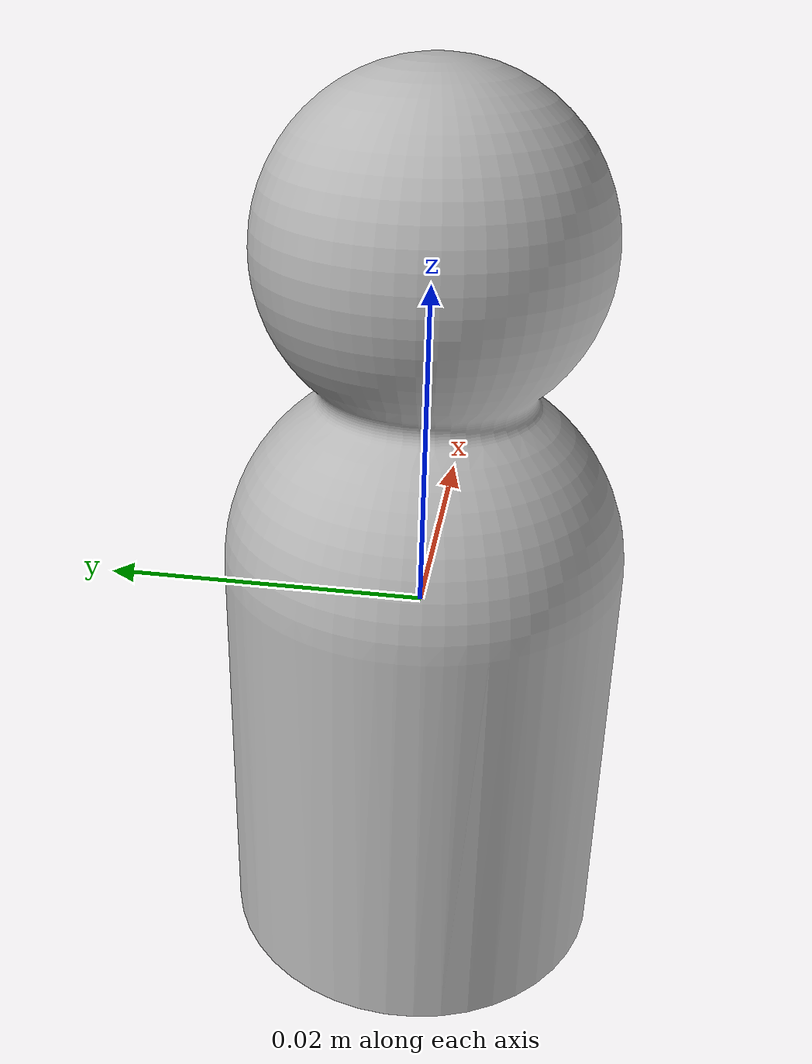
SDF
<?xml version="1.0" ?>
<sdf version="1.6">
  <model name="9)Pilot">
    <static>true</static>
    <link name="link">
      <collision name="collision">
        <geometry>
          <mesh>
            <scale>0.001 0.001 0.001</scale>
            <uri>model://9)Pilot/9)Pilot.stl</uri>
          </mesh>
        </geometry>
      </collision>
      <visual name="visual">
        <geometry>
          <mesh>
            <scale>0.001 0.001 0.001</scale>
            <uri>model://9)Pilot/9)Pilot.dae</uri>
          </mesh>
        </geometry>
      </visual>
    </link>
  </model>
</sdf>
